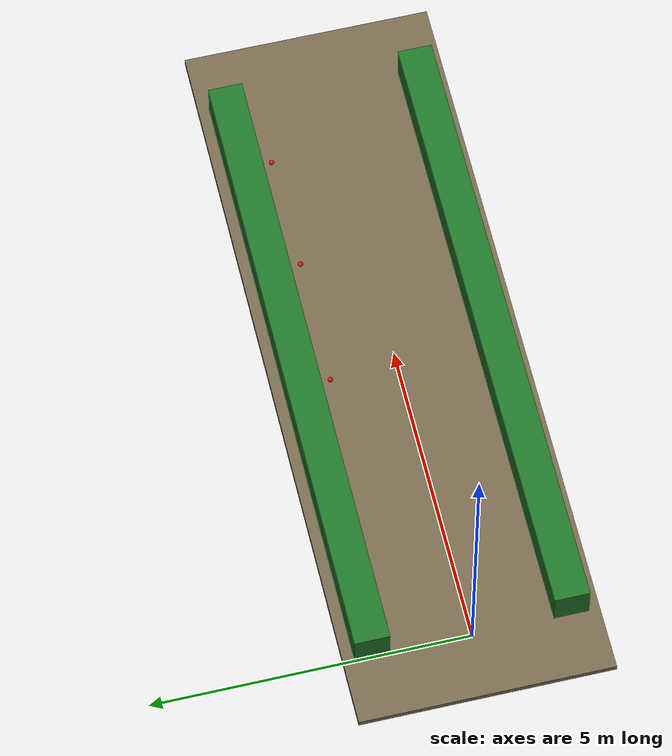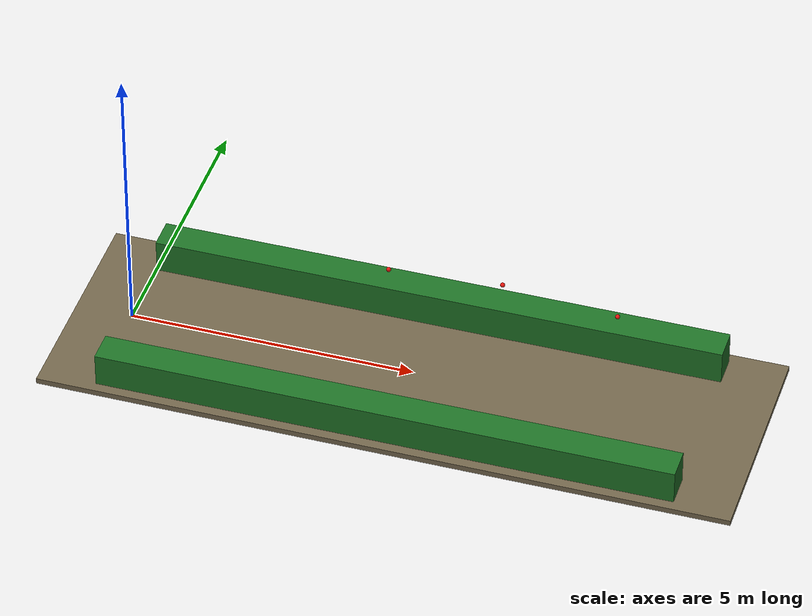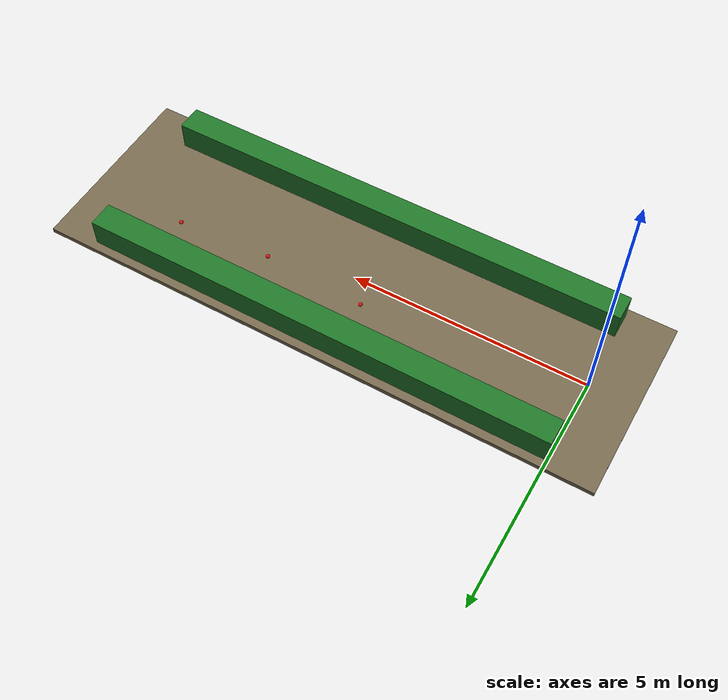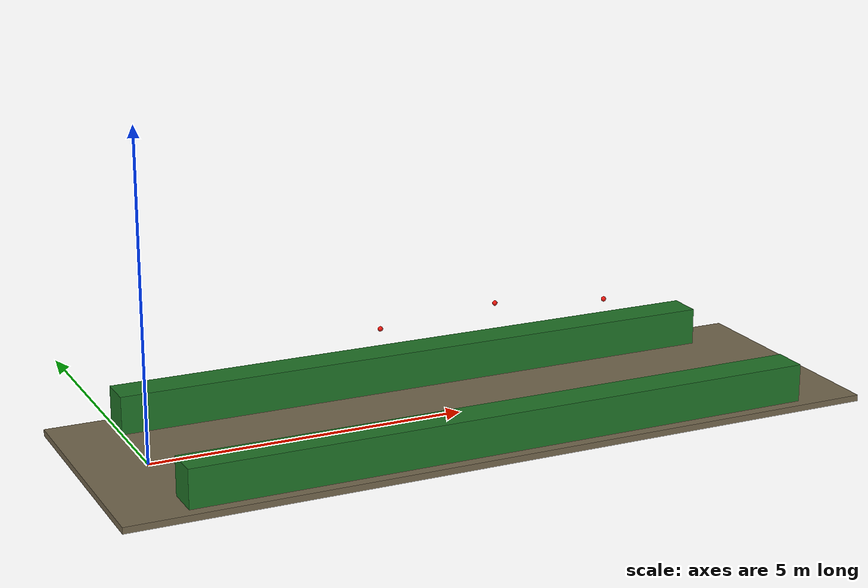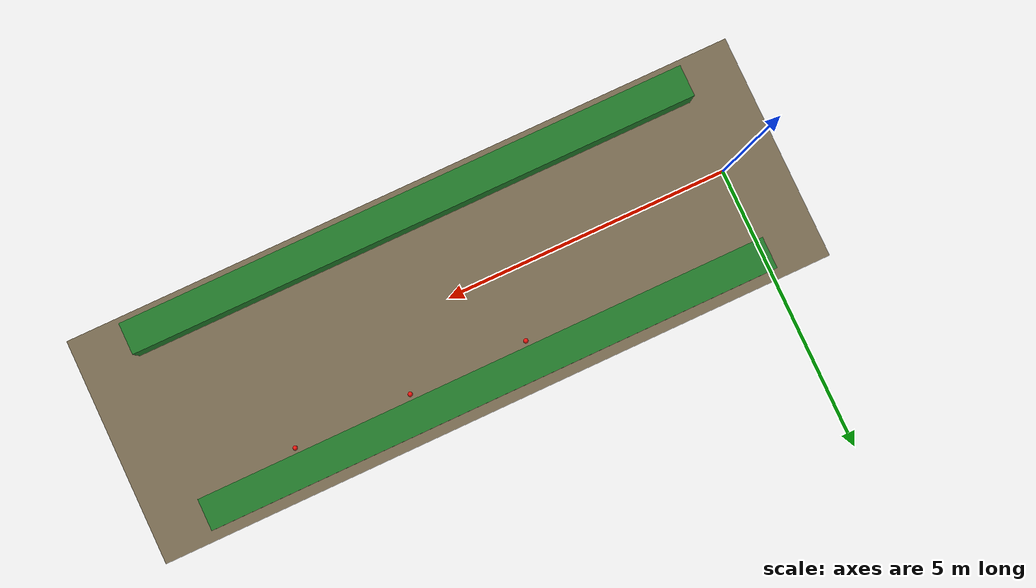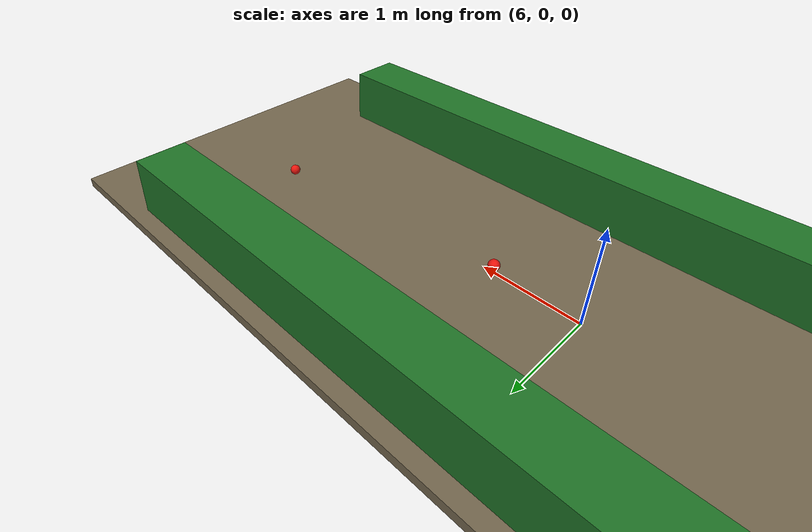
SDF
<?xml version="1.0"?>
<sdf version="1.9">
  <world name="greenhouse_v1">
    <gravity>0 0 -9.81</gravity>

    <light name="sun" type="directional">
      <pose>0 0 10 0 0 0</pose>
      <diffuse>0.8 0.8 0.8 1</diffuse>
      <specular>0.2 0.2 0.2 1</specular>
      <direction>-0.5 0.1 -0.9</direction>
      <cast_shadows>true</cast_shadows>
    </light>

    <model name="ground">
      <static>true</static>
      <pose>5 0 -0.05 0 0 0</pose>
      <link name="ground_link">
        <collision name="collision">
          <geometry><box><size>12 4 0.1</size></box></geometry>
        </collision>
        <visual name="visual">
          <geometry><box><size>12 4 0.1</size></box></geometry>
          <material><ambient>0.35 0.30 0.22 1</ambient><diffuse>0.45 0.40 0.30 1</diffuse></material>
        </visual>
      </link>
    </model>

    <model name="greenhouse_left_row">
      <static>true</static>
      <pose>5 1.55 0.30 0 0 0</pose>
      <link name="row_link">
        <collision name="collision">
          <geometry><box><size>10 0.55 0.60</size></box></geometry>
        </collision>
        <visual name="visual">
          <geometry><box><size>10 0.55 0.60</size></box></geometry>
          <material><ambient>0.10 0.35 0.12 1</ambient><diffuse>0.12 0.45 0.15 1</diffuse></material>
        </visual>
      </link>
    </model>

    <model name="greenhouse_right_row">
      <static>true</static>
      <pose>5 -1.55 0.30 0 0 0</pose>
      <link name="row_link">
        <collision name="collision">
          <geometry><box><size>10 0.55 0.60</size></box></geometry>
        </collision>
        <visual name="visual">
          <geometry><box><size>10 0.55 0.60</size></box></geometry>
          <material><ambient>0.10 0.35 0.12 1</ambient><diffuse>0.12 0.45 0.15 1</diffuse></material>
        </visual>
      </link>
    </model>

    <model name="tomato_001">
      <static>true</static>
      <pose>4.20 1.20 1.10 0 0 0</pose>
      <link name="fruit_link">
        <collision name="collision"><geometry><sphere><radius>0.04</radius></sphere></geometry></collision>
        <visual name="visual">
          <geometry><sphere><radius>0.04</radius></sphere></geometry>
          <material><ambient>0.70 0.05 0.04 1</ambient><diffuse>0.90 0.08 0.05 1</diffuse></material>
        </visual>
      </link>
    </model>

    <model name="tomato_002">
      <static>true</static>
      <pose>6.20 1.20 1.25 0 0 0</pose>
      <link name="fruit_link">
        <collision name="collision"><geometry><sphere><radius>0.04</radius></sphere></geometry></collision>
        <visual name="visual">
          <geometry><sphere><radius>0.04</radius></sphere></geometry>
          <material><ambient>0.70 0.05 0.04 1</ambient><diffuse>0.90 0.08 0.05 1</diffuse></material>
        </visual>
      </link>
    </model>

    <model name="tomato_003">
      <static>true</static>
      <pose>8.20 1.20 1.05 0 0 0</pose>
      <link name="fruit_link">
        <collision name="collision"><geometry><sphere><radius>0.04</radius></sphere></geometry></collision>
        <visual name="visual">
          <geometry><sphere><radius>0.04</radius></sphere></geometry>
          <material><ambient>0.70 0.05 0.04 1</ambient><diffuse>0.90 0.08 0.05 1</diffuse></material>
        </visual>
      </link>
    </model>
  </world>
</sdf>
